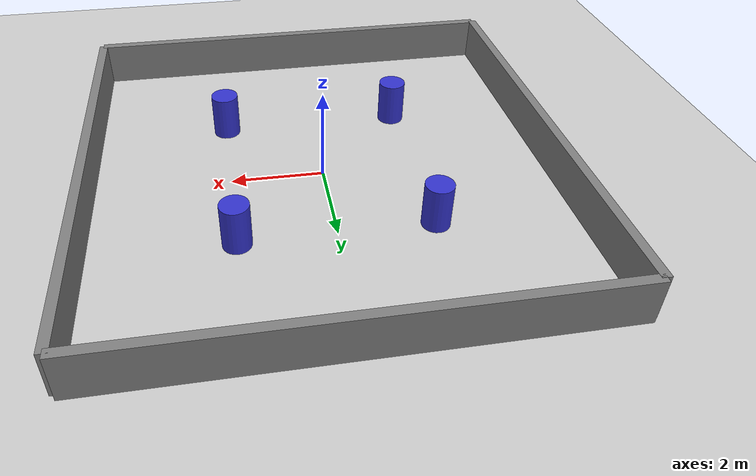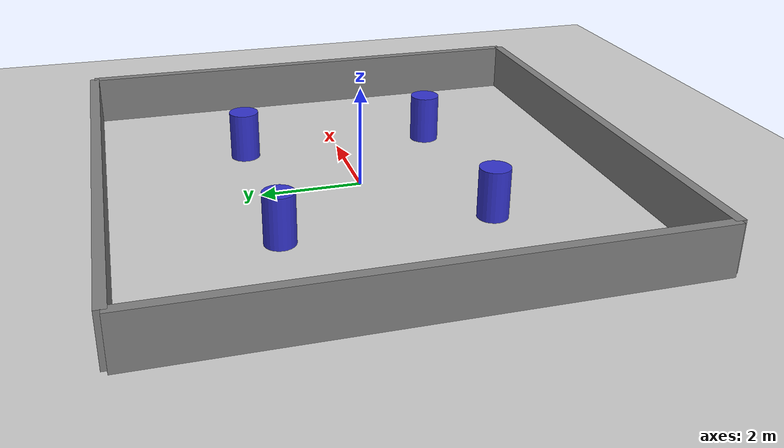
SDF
<sdf version="1.6">
 <world name="cybersecurity_demo_world">
  <include><uri>model://sun</uri></include>
  <include><uri>model://ground_plane</uri></include>
  <model name="wall_north">
   <static>true</static>
   <pose>0 5 0.5 0 0 0</pose>
   <link name="link">
    <collision name="collision"><geometry><box><size>10 0.2 1</size></box></geometry></collision>
    <visual name="visual">
     <geometry><box><size>10 0.2 1</size></box></geometry>
     <material><ambient>0.5 0.5 0.5 1</ambient></material>
    </visual>
   </link>
  </model>
  <model name="wall_south">
   <static>true</static>
   <pose>0 -5 0.5 0 0 0</pose>
   <link name="link">
    <collision name="collision"><geometry><box><size>10 0.2 1</size></box></geometry></collision>
    <visual name="visual">
     <geometry><box><size>10 0.2 1</size></box></geometry>
     <material><ambient>0.5 0.5 0.5 1</ambient></material>
    </visual>
   </link>
  </model>
  <model name="wall_east">
   <static>true</static>
   <pose>5 0 0.5 0 0 1.5708</pose>
   <link name="link">
    <collision name="collision"><geometry><box><size>10 0.2 1</size></box></geometry></collision>
    <visual name="visual">
     <geometry><box><size>10 0.2 1</size></box></geometry>
     <material><ambient>0.5 0.5 0.5 1</ambient></material>
    </visual>
   </link>
  </model>
  <model name="wall_west">
   <static>true</static>
   <pose>-5 0 0.5 0 0 1.5708</pose>
   <link name="link">
    <collision name="collision"><geometry><box><size>10 0.2 1</size></box></geometry></collision>
    <visual name="visual">
     <geometry><box><size>10 0.2 1</size></box></geometry>
     <material><ambient>0.5 0.5 0.5 1</ambient></material>
    </visual>
   </link>
  </model>
  <model name="cylinder_NE">
   <static>true</static>
   <pose>2 2 0.5 0 0 0</pose>
   <link name="link">
    <collision name="collision">
     <geometry><cylinder><radius>0.3</radius><length>1</length></cylinder></geometry>
    </collision>
    <visual name="visual">
     <geometry><cylinder><radius>0.3</radius><length>1</length></cylinder></geometry>
     <material><ambient>0.2 0.2 0.8 1</ambient></material>
    </visual>
   </link>
  </model>
  <model name="cylinder_NW">
   <static>true</static>
   <pose>-2 2 0.5 0 0 0</pose>
   <link name="link">
    <collision name="collision">
     <geometry><cylinder><radius>0.3</radius><length>1</length></cylinder></geometry>
    </collision>
    <visual name="visual">
     <geometry><cylinder><radius>0.3</radius><length>1</length></cylinder></geometry>
     <material><ambient>0.2 0.2 0.8 1</ambient></material>
    </visual>
   </link>
  </model>
  <model name="cylinder_SE">
   <static>true</static>
   <pose>2 -2 0.5 0 0 0</pose>
   <link name="link">
    <collision name="collision">
     <geometry><cylinder><radius>0.3</radius><length>1</length></cylinder></geometry>
    </collision>
    <visual name="visual">
     <geometry><cylinder><radius>0.3</radius><length>1</length></cylinder></geometry>
     <material><ambient>0.2 0.2 0.8 1</ambient></material>
    </visual>
   </link>
  </model>
  <model name="cylinder_SW">
   <static>true</static>
   <pose>-2 -2 0.5 0 0 0</pose>
   <link name="link">
    <collision name="collision">
     <geometry><cylinder><radius>0.3</radius><length>1</length></cylinder></geometry>
    </collision>
    <visual name="visual">
     <geometry><cylinder><radius>0.3</radius><length>1</length></cylinder></geometry>
     <material><ambient>0.2 0.2 0.8 1</ambient></material>
    </visual>
   </link>
  </model>
  <physics type="ode">
   <real_time_update_rate>1000.0</real_time_update_rate>
   <max_step_size>0.001</max_step_size>
   <real_time_factor>1</real_time_factor>
  </physics>
 </world>
</sdf>
